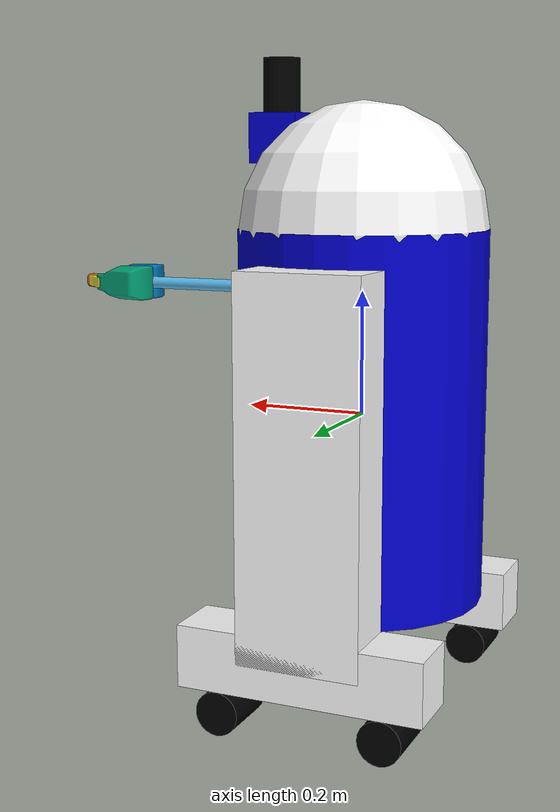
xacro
<?xml version="1.0"?>
<robot name="roscontrol" xmlns:xacro="http://ros.org/wiki/xacro">

  <xacro:property name="width" value="0.2" />
  <xacro:property name="leglen" value="0.6" />
  <xacro:property name="polelen" value="0.2" />
  <xacro:property name="bodylen" value="0.6" />
  <xacro:property name="baselen" value="0.4" />
  <xacro:property name="wheeldiam" value="0.07" />

  <material name="blue">
    <color rgba="0 0 0.8 1"/>
  </material>

  <material name="black">
    <color rgba="0 0 0 1"/>
  </material>

  <material name="white">
    <color rgba="1 1 1 1"/>
  </material>

  <xacro:macro name="default_inertial" params="mass">
    <inertial>
      <mass value="${mass}" />
      <inertia ixx="1.0" ixy="0.0" ixz="0.0" iyy="1.0" iyz="0.0" izz="1.0" />
    </inertial>
  </xacro:macro>

  <link name="base_link">
    <visual>
      <geometry>
        <cylinder radius="${width}" length="${bodylen}"/>
      </geometry>
      <material name="blue"/>
    </visual>
    <collision>
      <geometry>
        <cylinder radius="${width}" length="${bodylen}"/>
      </geometry>
    </collision>
    <xacro:default_inertial mass="10"/>
  </link>

  <xacro:macro name="wheel" params="prefix suffix reflect">

    <link name="${prefix}_${suffix}_wheel">
      <visual>
        <origin xyz="0 0 0" rpy="${pi/2} 0 0" />
        <geometry>
          <cylinder radius="${wheeldiam/2}" length="0.1"/>
        </geometry>
        <material name="black"/>
      </visual>
      <collision>
        <origin xyz="0 0 0" rpy="${pi/2} 0 0" />
        <geometry>
          <cylinder radius="${wheeldiam/2}" length="0.1"/>
        </geometry>
      </collision>
      <xacro:default_inertial mass="1"/>
    </link>
    <joint name="${prefix}_${suffix}_wheel_joint" type="continuous">
      <axis xyz="0 1 0" rpy="0 0 0" />
      <parent link="${prefix}_base"/>
      <child link="${prefix}_${suffix}_wheel"/>
      <origin xyz="${baselen*reflect/3} 0 -${wheeldiam/2+.05}" rpy="0 0 0"/>
    </joint>

    <!-- This block provides the simulator (Gazebo) with information on a few additional
    physical properties. See http://gazebosim.org/tutorials/?tut=ros_urdf for more-->
    <gazebo reference="${prefix}_${suffix}_wheel">
      <mu1 value="200.0"/>
      <mu2 value="100.0"/>
      <kp value="10000000.0" />
      <kd value="1.0" />
      <material>Gazebo/Grey</material>
    </gazebo>

    <!-- This block connects the wheel joint to an actuator (motor), which informs both
    simulation and visualization of the robot -->
    <transmission name="${prefix}_${suffix}_wheel_trans">
      <type>transmission_interface/SimpleTransmission</type>
      <actuator name="${prefix}_${suffix}_wheel_motor">
        <mechanicalReduction>1</mechanicalReduction>
      </actuator>
      <joint name="${prefix}_${suffix}_wheel_joint">
        <hardwareInterface>hardware_interface/VelocityJointInterface</hardwareInterface>
      </joint>
    </transmission>

  </xacro:macro>

  <xacro:macro name="leg" params="prefix reflect">
    <link name="${prefix}_leg">
      <visual>
        <geometry>
          <box size="${leglen} 0.1 0.2"/>
        </geometry>
        <origin xyz="0 0 -${leglen/2}" rpy="0 ${pi/2} 0"/>
        <material name="white"/>
      </visual>
      <collision>
        <geometry>
          <box size="${leglen} 0.1 0.2"/>
        </geometry>
        <origin xyz="0 0 -${leglen/2}" rpy="0 ${pi/2} 0"/>
      </collision>
      <xacro:default_inertial mass="10"/>
    </link>

    <joint name="base_to_${prefix}_leg" type="fixed">
      <parent link="base_link"/>
      <child link="${prefix}_leg"/>
      <origin xyz="0 ${reflect*(width+.02)} 0.25" />
    </joint>

    <link name="${prefix}_base">
      <visual>
        <geometry>
          <box size="${baselen} 0.1 0.1"/>
        </geometry>
        <material name="white"/>
      </visual>
      <collision>
        <geometry>
          <box size="${baselen} 0.1 0.1"/>
        </geometry>
      </collision>
      <xacro:default_inertial mass="10"/>
    </link>

    <joint name="${prefix}_base_joint" type="fixed">
      <parent link="${prefix}_leg"/>
      <child link="${prefix}_base"/>
      <origin xyz="0 0 ${-leglen}" />
    </joint>
    <xacro:wheel prefix="${prefix}" suffix="front" reflect="1"/>
    <xacro:wheel prefix="${prefix}" suffix="back" reflect="-1"/>
  </xacro:macro>
  <xacro:leg prefix="right" reflect="-1" />
  <xacro:leg prefix="left" reflect="1" />

  <joint name="gripper_extension" type="prismatic">
    <parent link="base_link"/>
    <child link="gripper_pole"/>
    <limit effort="1000.0" lower="-${width*2-.02}" upper="0" velocity="0.5"/>
    <origin rpy="0 0 0" xyz="${width-.01} 0 0.2"/>
    <limit effort="30" velocity="0.2"/>
    <dynamics damping="0.0" friction="0.0"/>
  </joint>

  <link name="gripper_pole">
    <visual>
      <geometry>
        <cylinder length="${polelen}" radius="0.01"/>
      </geometry>
      <origin xyz="${polelen/2} 0 0" rpy="0 ${pi/2} 0 "/>
    </visual>
    <collision>
      <geometry>
        <cylinder length="${polelen}" radius="0.01"/>
      </geometry>
      <origin xyz="${polelen/2} 0 0" rpy="0 ${pi/2} 0 "/>
    </collision>
    <xacro:default_inertial mass="0.05"/>
  </link>

  <transmission name="gripper_extension_trans">
    <type>transmission_interface/SimpleTransmission</type>
    <actuator name="gripper_extension_motor">
      <mechanicalReduction>1</mechanicalReduction>
    </actuator>
    <joint name="gripper_extension">
      <hardwareInterface>hardware_interface/PositionJointInterface</hardwareInterface>
    </joint>
  </transmission>

  <xacro:macro name="gripper" params="prefix reflect">
    <joint name="${prefix}_gripper_joint" type="revolute">
      <axis xyz="0 0 ${reflect}"/>
      <limit effort="1000.0" lower="0.0" upper="0.548" velocity="0.5"/>
      <origin rpy="0 0 0" xyz="${polelen} ${reflect*0.01} 0"/>
      <parent link="gripper_pole"/>
      <child link="${prefix}_gripper"/>
      <limit effort="30" velocity="1.0"/>
      <dynamics damping="0.0" friction="0.0"/>
    </joint>
    <link name="${prefix}_gripper">
      <visual>
        <origin rpy="${(reflect-1)/2*pi} 0 0" xyz="0 0 0"/>
        <geometry>
          <mesh filename="package://urdf_tutorial/meshes/l_finger.dae"/>
        </geometry>
      </visual>
      <collision>
        <geometry>
          <mesh filename="package://urdf_tutorial/meshes/l_finger.dae"/>
        </geometry>
        <origin rpy="${(reflect-1)/2*pi} 0 0" xyz="0 0 0"/>
      </collision>
      <xacro:default_inertial mass="0.05"/>
    </link>
    <transmission name="${prefix}_gripper_trans">
      <type>transmission_interface/SimpleTransmission</type>
      <actuator name="${prefix}_gripper_motor">
        <mechanicalReduction>1</mechanicalReduction>
      </actuator>
      <joint name="${prefix}_gripper_joint">
        <hardwareInterface>hardware_interface/PositionJointInterface</hardwareInterface>
      </joint>
    </transmission>

    <joint name="${prefix}_tip_joint" type="fixed">
      <parent link="${prefix}_gripper"/>
      <child link="${prefix}_tip"/>
    </joint>
    <link name="${prefix}_tip">
      <visual>
        <origin rpy="${(reflect-1)/2*pi} 0 0" xyz="0.09137 0.00495 0"/>
        <geometry>
          <mesh filename="package://urdf_tutorial/meshes/l_finger_tip.dae"/>
        </geometry>
      </visual>
      <collision>
        <geometry>
          <mesh filename="package://urdf_tutorial/meshes/l_finger_tip.dae"/>
        </geometry>
        <origin rpy="${(reflect-1)/2*pi} 0 0" xyz="0.09137 0.00495 0"/>
      </collision>
      <xacro:default_inertial mass="0.05"/>
    </link>
  </xacro:macro>

  <xacro:gripper prefix="left" reflect="1" />
  <xacro:gripper prefix="right" reflect="-1" />

  <link name="head">
    <visual>
      <geometry>
        <sphere radius="${width}"/>
      </geometry>
      <material name="white"/>
    </visual>
    <collision>
      <geometry>
        <sphere radius="${width}"/>
      </geometry>
    </collision>
    <xacro:default_inertial mass="2"/>
  </link>

  <joint name="head_swivel" type="continuous">
    <parent link="base_link"/>
    <child link="head"/>
    <axis xyz="0 0 1"/>
    <origin xyz="0 0 ${bodylen/2}"/>
    <limit effort="30" velocity="1.0"/>
    <dynamics damping="0.0" friction="0.0"/>
  </joint>

  <!-- This block connects the head_swivel joint to an actuator (motor), which informs both
  simulation and visualization of the robot -->
  <transmission name="head_swivel_trans">
    <type>transmission_interface/SimpleTransmission</type>
    <actuator name="$head_swivel_motor">
      <mechanicalReduction>1</mechanicalReduction>
    </actuator>
    <joint name="head_swivel">
      <hardwareInterface>hardware_interface/PositionJointInterface</hardwareInterface>
    </joint>
  </transmission>

  <link name="box">
    <visual>
      <geometry>
        <box size="0.08 0.08 0.08"/>
      </geometry>
      <material name="blue"/>
      <origin xyz="-0.04 0 0"/>
    </visual>
    <collision>
      <geometry>
        <box size="0.08 0.08 0.08"/>
      </geometry>
    </collision>
    <xacro:default_inertial mass="1"/>
  </link>

  <joint name="tobox" type="fixed">
    <parent link="head"/>
    <child link="box"/>
    <origin xyz="${.707*width+0.04} 0 ${.707*width}"/>
  </joint>

  <link name="lidar_link">
    <visual>
      <geometry>
        <cylinder radius="0.030" length="0.086"/>
      </geometry>
      <origin xyz="0 0 0" rpy="0 0 0"/>
      <material name="black"/>
    </visual>
    <collision>
      <geometry>
        <cylinder radius="0.030" length="0.086"/>
      </geometry>
      <origin xyz="0 0 0" rpy="0 0 0"/>
    </collision>
    <inertial>
        <origin xyz="0 0 0" rpy="0 0 0" />
        <mass value="0.25" />
        <inertia ixx="0.00021033333"
            ixy="0"  ixz="0"
            iyx="0"  iyy="0.00021033333"
            iyz="0"
            izx="0"  izy="0"  izz="0.0001125" />
    </inertial>
  </link>

  <joint name="lidar_joint" type="fixed">
    <parent link="box"/>
    <child  link="lidar_link"/>
    <origin xyz="-0.04 0 0.083" rpy="0 0 0" />
  </joint>

  <!-- Gazebo plugin for ROS Control -->
  <gazebo>
    <plugin name="gazebo_ros_control" filename="libgazebo_ros_control.so">
      <robotNamespace>/</robotNamespace>
    </plugin>
  </gazebo>

  <gazebo reference="lidar_link">
    <material name="black"/>
    <sensor type="ray" name="lidar">
      <pose>0 0 0 0 0 0</pose>
      <visualize>true</visualize>
      <update_rate>15</update_rate>
      <ray>
        <scan>
          <horizontal>
            <samples>400</samples>
            <resolution>1</resolution>
            <min_angle>-2.35619449</min_angle>
            <max_angle>2.35619449</max_angle>
          </horizontal>
        </scan>
        <range>
          <min>0.05</min>
          <max>25.0</max>
          <resolution>0.001</resolution>
        </range>
        <noise>
          <type>gaussian</type>
          <mean>0.0</mean>
          <stddev>0.01</stddev>
        </noise>
      </ray>
      <plugin name="gazebo_ros_lidar_controller" filename="libgazebo_ros_laser.so">
        <topicName>scan</topicName>
        <frameName>lidar_link</frameName>
      </plugin>
    </sensor>
  </gazebo>

</robot>
